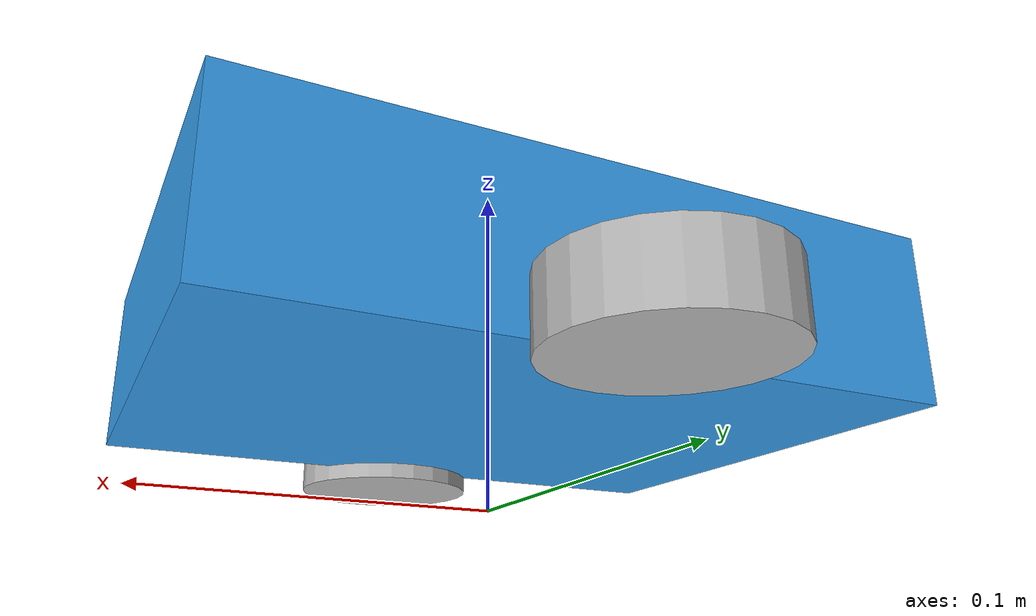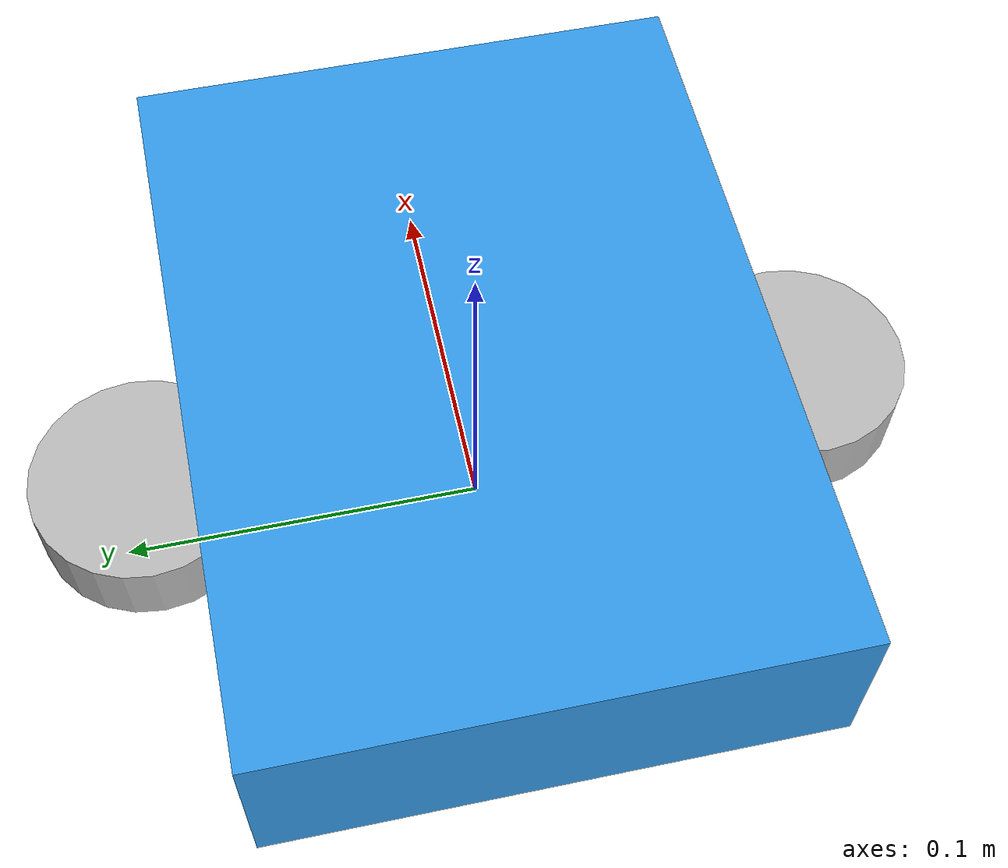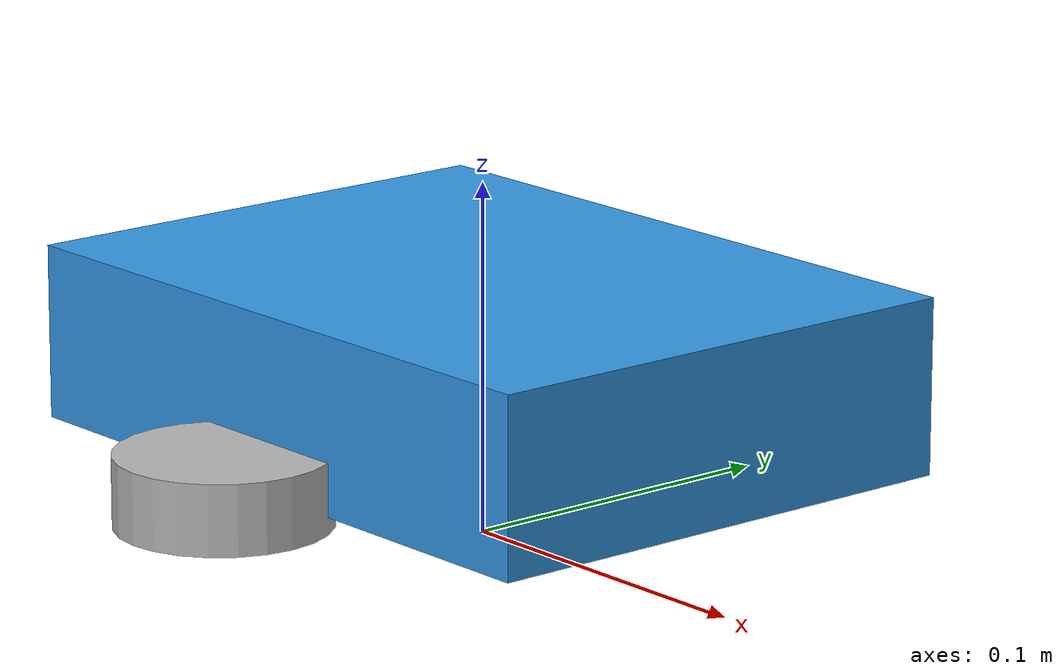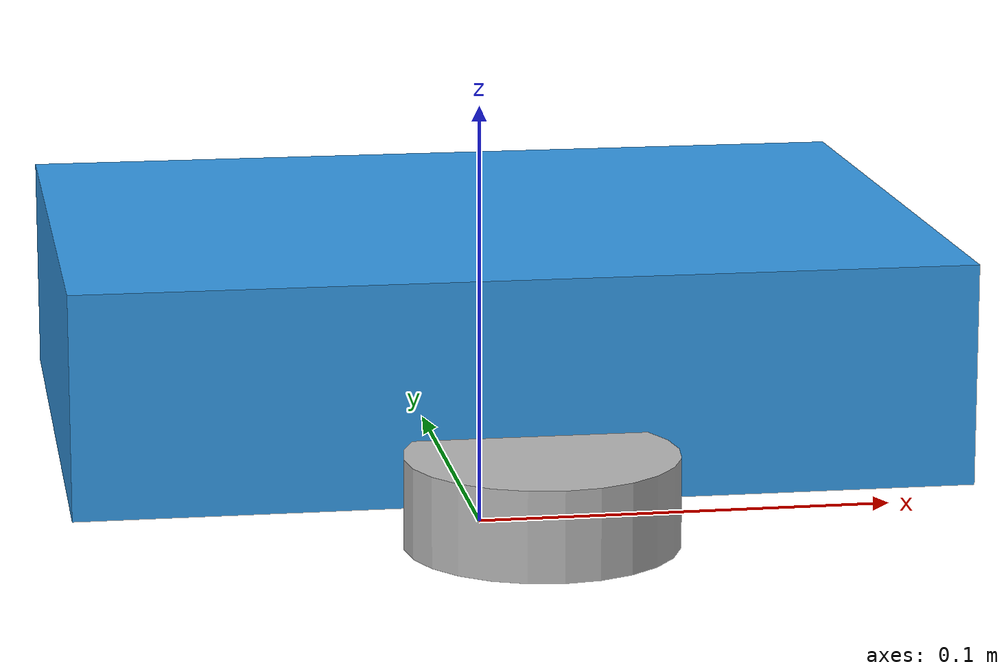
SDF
<?xml version="1.6" ?>
<sdf version="1.6">
  <model name="aoa_bot">
    <static>false</static>

    <!-- القاعدة -->
    <link name="base_link">
      <pose>0 0 0.05 0 0 0</pose>
      <inertial><mass>1.5</mass></inertial>
      <collision name="base_collision">
        <geometry><box><size>0.20 0.15 0.05</size></box></geometry>
      </collision>
      <visual name="base_visual">
        <geometry><box><size>0.20 0.15 0.05</size></box></geometry>
        <material><ambient>0.2 0.6 0.9 1</ambient></material>
      </visual>
    </link>

    <!-- العجلات -->
    <link name="left_wheel">
      <pose>0 0.09 0.03 0 0 0</pose>
      <inertial><mass>0.1</mass></inertial>
      <collision name="lw_collision"><geometry><cylinder><radius>0.03</radius><length>0.02</length></cylinder></geometry></collision>
      <visual name="lw_visual"><geometry><cylinder><radius>0.03</radius><length>0.02</length></cylinder></geometry></visual>
    </link>
    <link name="right_wheel">
      <pose>0 -0.09 0.03 0 0 0</pose>
      <inertial><mass>0.1</mass></inertial>
      <collision name="rw_collision"><geometry><cylinder><radius>0.03</radius><length>0.02</length></cylinder></geometry></collision>
      <visual name="rw_visual"><geometry><cylinder><radius>0.03</radius><length>0.02</length></cylinder></geometry></visual>
    </link>

    <!-- مفاصل تدوير العجلات -->
    <joint name="left_wheel_hinge" type="revolute">
      <parent>base_link</parent><child>left_wheel</child>
      <axis><xyz>0 1 0</xyz><limit><lower>-1e16</lower><upper>1e16</upper></limit></axis>
    </joint>
    <joint name="right_wheel_hinge" type="revolute">
      <parent>base_link</parent><child>right_wheel</child>
      <axis><xyz>0 1 0</xyz><limit><lower>-1e16</lower><upper>1e16</upper></limit></axis>
    </joint>

    <!-- حساس أمامي -->
    <link name="front_sensor_link">
      <pose>0.11 0 0.05 0 0 0</pose>
      <sensor name="front_ray" type="ray">
        <update_rate>20</update_rate>
        <ray>
          <scan>
            <horizontal>
              <samples>21</samples>
              <resolution>1</resolution>
              <min_angle>-0.26</min_angle>
              <max_angle>0.26</max_angle>
            </horizontal>
          </scan>
          <range><min>0.02</min><max>2.5</max></range>
        </ray>
        <plugin name="front_scan" filename="libgazebo_ros_ray_sensor.so">
          <ros>
            <namespace>/aoa</namespace>
            <remapping>~/out:=/aoa/front/scan</remapping>
          </ros>
          <output_type>sensor_msgs/LaserScan</output_type>
          <frame_name>front_sensor_link</frame_name>
        </plugin>
      </sensor>
    </link>

    <!-- حساس يمين -->
    <link name="right_sensor_link">
      <pose>0.07 -0.08 0.05 0 0 -1.047</pose>
      <sensor name="right_ray" type="ray">
        <update_rate>20</update_rate>
        <ray>
          <scan>
            <horizontal>
              <samples>21</samples>
              <resolution>1</resolution>
              <min_angle>-0.26</min_angle>
              <max_angle>0.26</max_angle>
            </horizontal>
          </scan>
          <range><min>0.02</min><max>2.0</max></range>
        </ray>
        <plugin name="right_scan" filename="libgazebo_ros_ray_sensor.so">
          <ros><namespace>/aoa</namespace><remapping>~/out:=/aoa/right/scan</remapping></ros>
          <output_type>sensor_msgs/LaserScan</output_type>
          <frame_name>right_sensor_link</frame_name>
        </plugin>
      </sensor>
    </link>

    <!-- حساس يسار -->
    <link name="left_sensor_link">
      <pose>0.07 0.08 0.05 0 0 1.047</pose>
      <sensor name="left_ray" type="ray">
        <update_rate>20</update_rate>
        <ray>
          <scan>
            <horizontal>
              <samples>21</samples>
              <resolution>1</resolution>
              <min_angle>-0.26</min_angle>
              <max_angle>0.26</max_angle>
            </horizontal>
          </scan>
          <range><min>0.02</min><max>2.0</max></range>
        </ray>
        <plugin name="left_scan" filename="libgazebo_ros_ray_sensor.so">
          <ros><namespace>/aoa</namespace><remapping>~/out:=/aoa/left/scan</remapping></ros>
          <output_type>sensor_msgs/LaserScan</output_type>
          <frame_name>left_sensor_link</frame_name>
        </plugin>
      </sensor>
    </link>

    <!-- بلجن القيادة الدفرنسيل -->
    <plugin name="diff_drive" filename="libgazebo_ros_diff_drive.so">
      <ros><namespace>/aoa</namespace></ros>
      <update_rate>50</update_rate>
      <left_joint>left_wheel_hinge</left_joint>
      <right_joint>right_wheel_hinge</right_joint>
      <wheel_separation>0.18</wheel_separation>
      <wheel_diameter>0.06</wheel_diameter>
      <cmd_vel_topic>cmd_vel</cmd_vel_topic>
      <publish_tf>true</publish_tf>
      <odometry_frame>odom</odometry_frame>
      <robot_base_frame>base_link</robot_base_frame>
      <max_wheel_torque>2.0</max_wheel_torque>
      <max_wheel_acceleration>5.0</max_wheel_acceleration>
    </plugin>
  </model>
</sdf>
